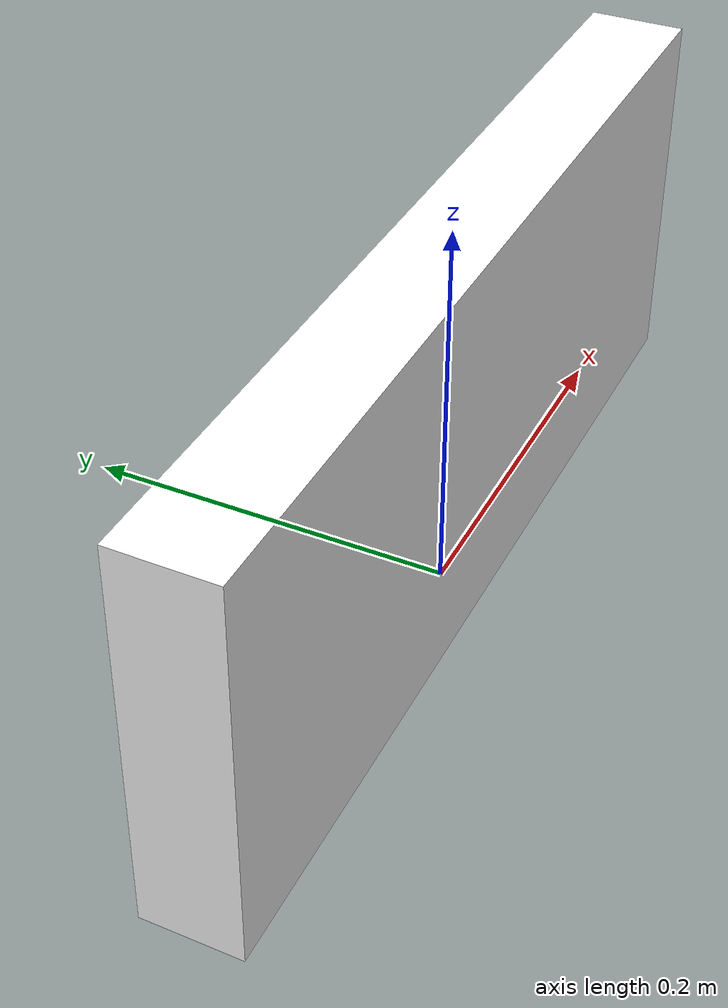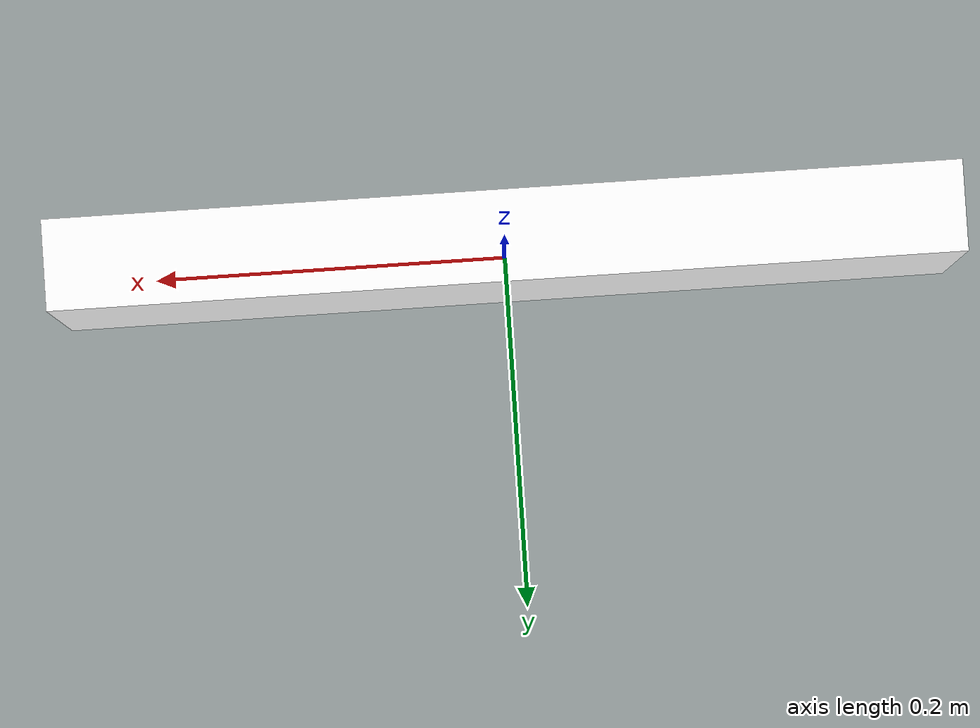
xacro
<?xml version = "1.0"?>
<robot name="goal" xmlns:xacro="http://wiki.ros.org/wiki/xacro">

<link name="base"/>

<link name="goal">
  <inertial>
    <origin xyz="0 0 0.1" rpy="0 0 0"/>
    <mass value="100"/>
    <inertia ixx="0.3542" ixy="0" ixz="0" iyy="2.1042" iyz="0" izz="2.1042"/>
  </inertial>

  <visual>
  <origin xyz="0 0 0.1" rpy="0 0 0"/>
    <geometry>
      <box size="0.5 0.05 0.2"/>
    </geometry>
    <material name="green_mat">
      <color rgba="1 1 1 1"/>
    </material>
  </visual>

   <collision>
   <origin xyz="0 0 0.1" rpy="0 0 0"/>
   <geometry>
     <box size="0.5 0.05 0.2"/>
   </geometry>
   </collision>
</link>

<joint name="fixed" type="fixed">
  <origin xyz="0 0 0" rpy="0 0 0"/>
  <parent link="base"/>
  <child link="goal"/>
</joint>
</robot>
